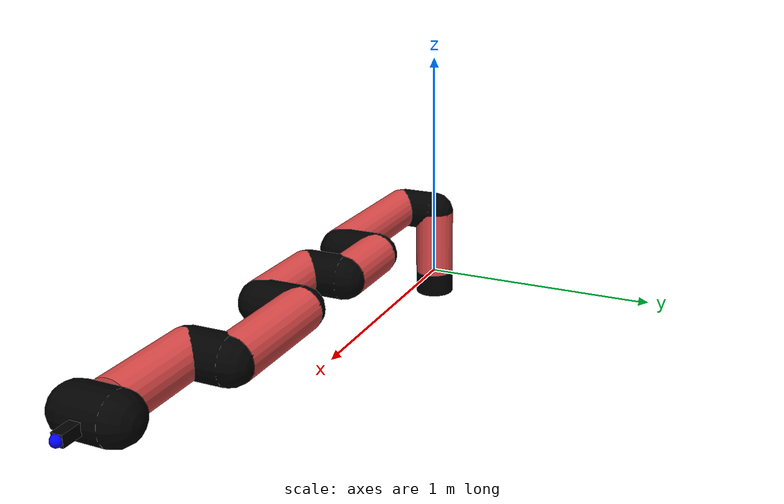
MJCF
<mujoco model="manipulator">
		<compiler angle="degree" coordinate="local" inertiafromgeom="auto" meshdir="meshes/"/>
		<option gravity="0 0 0" integrator="RK4" iterations="30" timestep="0.01"/>

		<default>
		<joint armature="1" limited="true" stiffness="10" damping="15" frictionloss="5.0"/>
		<geom conaffinity="1" condim="3" contype="1" friction=".5 .1 .1" margin="0.002"/>
		<motor ctrllimited="true"/>
		<position ctrllimited="true"/>
		</default>

		<asset>
		<texture builtin="gradient" height="100" rgb1="1.0 1.0 1.0" rgb2="1.0 1.0 1.0" type="skybox" width="100"/>
		<texture builtin="flat" height="32" name="arm_tex" rgb1="0.9 0.3 0.3" type="2d" width="32"/>
		<texture builtin="flat" height="32" name="gripper_tex" rgb1="0.0 0.0 0.0" type="cube" width="32"/>

		<material name="arm_mat" shininess="0.1" specular="0.1" texture="arm_tex"/>
		<material name="gripper_mat" shininess="1" specular="1" texture="gripper_tex"/>
		</asset>

		<worldbody>
		<light cutoff="45" diffuse=".8 .8 .8" dir="0 0.16 -1" directional="false" name="light" pos="0 -2.0 8.0" specular="0.3 0.3 0.3"/>

		<body name="base_link" pos="0 0 -0.1">
		<geom fromto="0 0 0 0 0 0.1" material="arm_mat" name="base_link" rgba="0.0 0.0 0.0 1" size="0.085" type="cylinder"/>
		</body>

		<body name="l1" pos="0 0 0">
<geom fromto="0 0 0 0 0 0.29" material="arm_mat" name="l1" rgba="0.9 0.3 0.3 1" size="0.085" type="cylinder"/>
<geom fromto="0 0 0.29 0 -0.16 0.29" material="arm_mat" name="l1_ex" rgba="0.0 0.0 0.0 1" size="0.085" type="capsule"/>
<joint axis="0 0 1" name="j1" pos="0 0 0" range="-90 90" damping="28.79" frictionloss="8.44"/>

<body name="l2" pos="0 -0.16 0.29">
<geom fromto="0 0 0 0.61 0 0" material="arm_mat" name="l2" rgba="0.9 0.3 0.3 1" size="0.085" type="cylinder"/>
<geom fromto="0.61 0 0 0.61 0.16 0" material="arm_mat" name="l2_ex" rgba="0.0 0.0 0.0 1" size="0.085" type="capsule"/>
<joint axis="0.0 1.0 0.0" name="j2" pos="0 0 0" range="-90 60" damping="34.4" frictionloss="9.94"/>

<body name="l3" pos="0.61 0.16 0">
<geom fromto="0 0 0 0.27 0 0" material="arm_mat" name="l3" rgba="0.9 0.3 0.3 1" size="0.085" type="cylinder"/>
<geom fromto="0.27 0 0 0.27 -0.16 0" material="arm_mat" name="l3_ex" rgba="0.0 0.0 0.0 1" size="0.085" type="capsule"/>
<joint axis="0.0 1.0 0.0" name="j3" pos="0 0 0" range="-30 60" damping="22.89" frictionloss="6.03"/>

<body name="l4" pos="0.27 -0.16 0">
<geom fromto="0 0 0 0.32 0 0" material="arm_mat" name="l4" rgba="0.9 0.3 0.3 1" size="0.085" type="cylinder"/>
<geom fromto="0.32 0 0 0.32 0.16 0" material="arm_mat" name="l4_ex" rgba="0.0 0.0 0.0 1" size="0.085" type="capsule"/>
<joint axis="0.0 1.0 0.0" name="j4" pos="0 0 0" range="-30 60" damping="39.16" frictionloss="12.64"/>

<body name="l5" pos="0.32 0.16 0">
<geom fromto="0 0 0 0.42 0 0" material="arm_mat" name="l5" rgba="0.9 0.3 0.3 1" size="0.085" type="cylinder"/>
<geom fromto="0.42 0 0 0.42 -0.16 0" material="arm_mat" name="l5_ex" rgba="0.0 0.0 0.0 1" size="0.085" type="capsule"/>
<joint axis="0.0 1.0 0.0" name="j5" pos="0 0 0" range="-30 60" damping="29.08" frictionloss="12.68"/>

<body name="l6" pos="0.42 -0.16 0">
<geom fromto="0 0 0 0.36 0 0" material="arm_mat" name="l6" rgba="0.9 0.3 0.3 1" size="0.085" type="cylinder"/>
<joint axis="0.0 1.0 0.0" name="j6" pos="0 0 0" range="-30 60" damping="41.7" frictionloss="8.44"/>

<body name="gripper" pos="0.36 0 0">
<geom fromto="0.05 -0.07 0 0.05 0.07 0" material="gripper_mat" name="gripper" rgba="0.0 0.0 0.0 1" size="0.085" type="capsule"/><joint axis="1 0 0" name="j7" pos="0 0 0" range="-90 90" damping="15" frictionloss="5.0"/><body name="finger" pos="0.1 0 0">
<geom fromto="0 0.0 0 0.1 0.0 0" material="gripper_mat" name="finger" rgba="0.0 0.0 0.0 1" size="0.020 0.06 0.06" type="box"/>
</body>
<site name="current" pos="0.2 0. 0.0" rgba="0. 0. 1.0 1" size="0.02" type="sphere"/>
</body>
</body>
</body>
</body>
</body>
</body>
</body>
</worldbody>
<actuator>
<motor ctrllimited="true" ctrlrange="-1.0 1.0" joint="j1" gear="73.56"/>
<motor ctrllimited="true" ctrlrange="-1.0 1.0" joint="j2" gear="89.45"/>
<motor ctrllimited="true" ctrlrange="-1.0 1.0" joint="j3" gear="65.77"/>
<motor ctrllimited="true" ctrlrange="-1.0 1.0" joint="j4" gear="80.7"/>
<motor ctrllimited="true" ctrlrange="-1.0 1.0" joint="j5" gear="74.17"/>
<motor ctrllimited="true" ctrlrange="-1.0 1.0" joint="j6" gear="58.9"/>
<motor ctrllimited="true" ctrlrange="-1.0 1.0" joint="j7" gear="80"/>
</actuator>
</mujoco>
